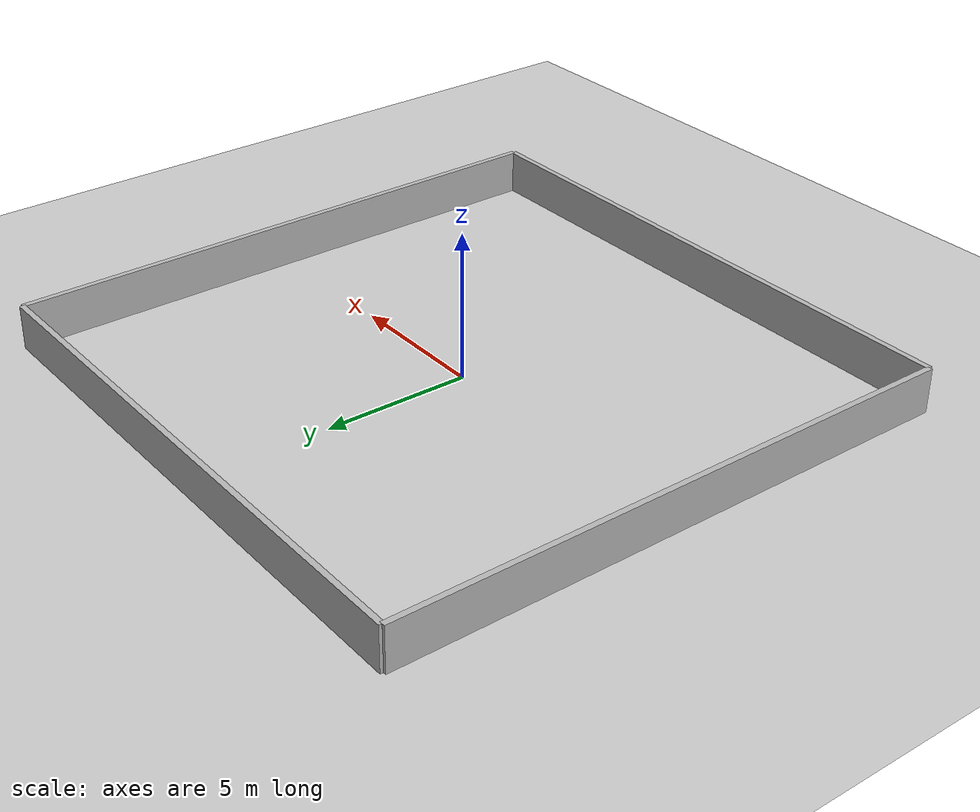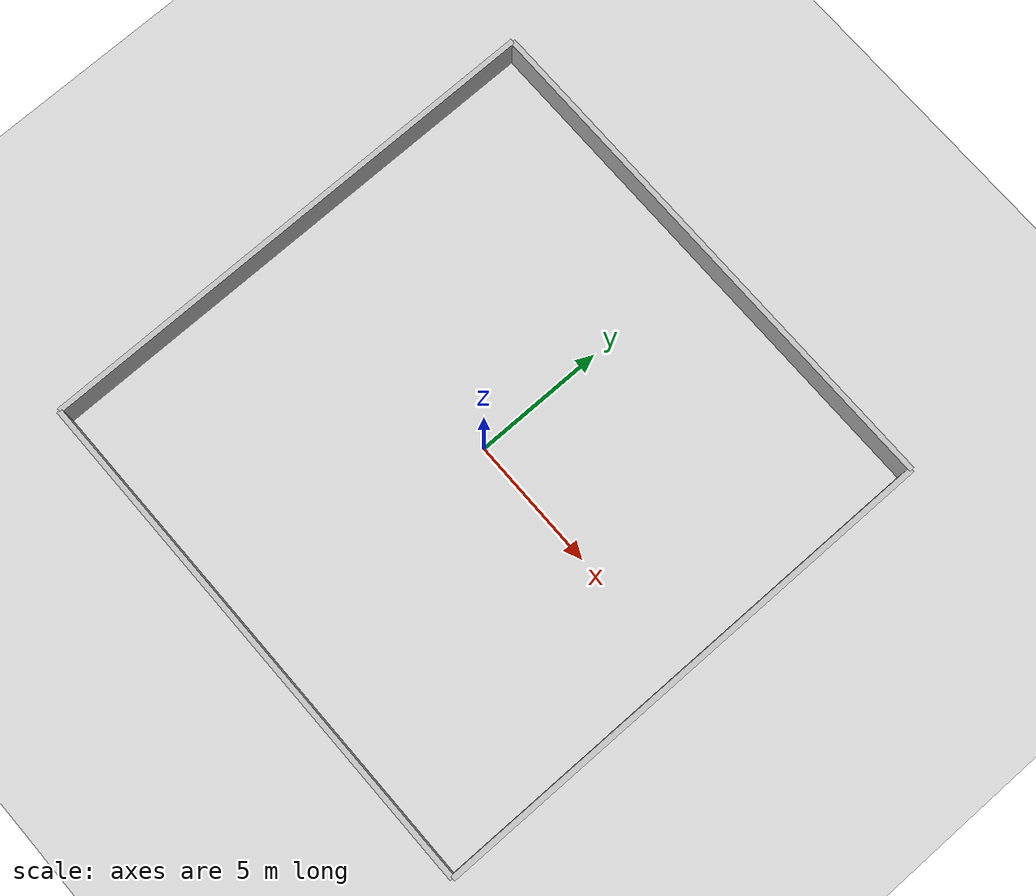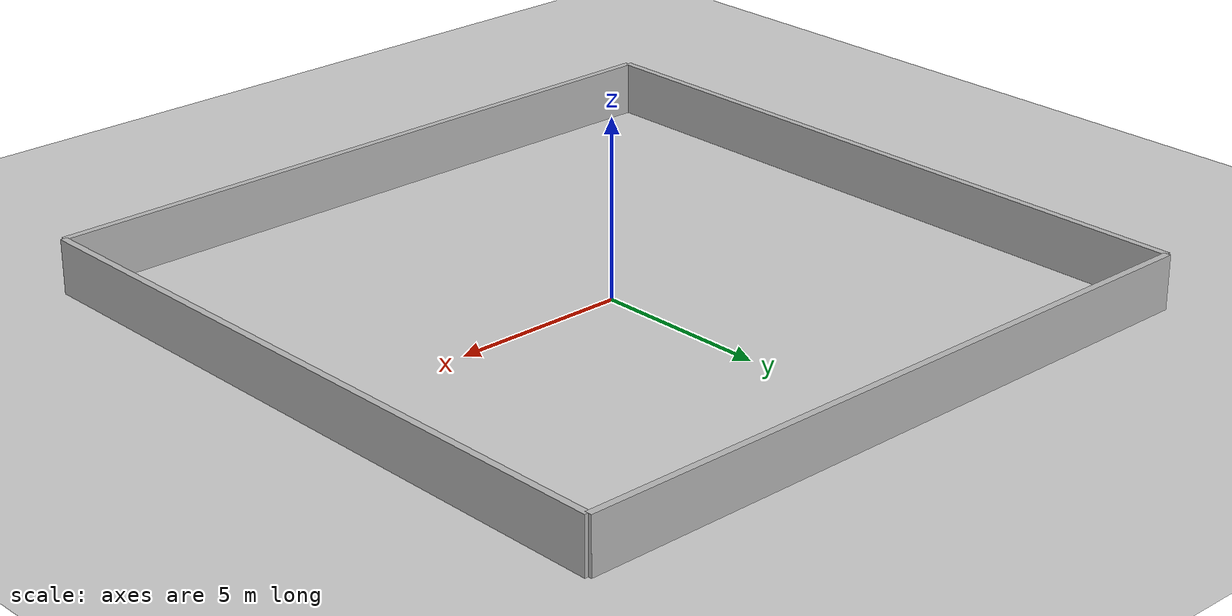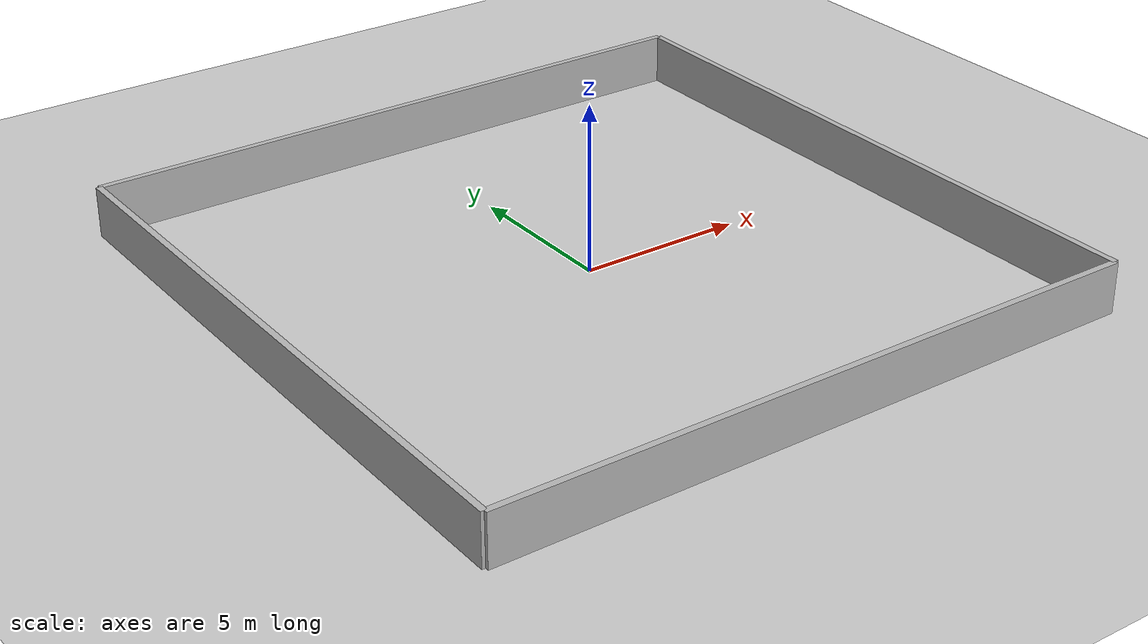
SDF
<?xml version="1.0" ?>

<sdf version="1.6">
  <world name="diff_drive">

    <physics name="1ms" type="ignored">
      <max_step_size>0.001</max_step_size>
      <real_time_factor>1.0</real_time_factor>
    </physics>

      <plugin
        name='ignition::gazebo::systems::Physics'
        filename='ignition-gazebo-physics-system'/>
    <plugin
      filename="ignition-gazebo-user-commands-system"
      name="ignition::gazebo::systems::UserCommands">
    </plugin>
    <plugin
      filename="ignition-gazebo-scene-broadcaster-system"
      name="ignition::gazebo::systems::SceneBroadcaster">
    </plugin>

    <plugin
      filename="libignition-gazebo-sensors-system.so"
      name="ignition::gazebo::systems::Sensors">
      <render_engine>ogre2</render_engine>
    </plugin>

    <gui fullscreen="0">

      <!-- 3D scene -->
      <plugin filename="GzScene3D" name="3D View">
        <ignition-gui>
          <title>3D View</title>
          <property type="bool" key="showTitleBar">false</property>
          <property type="string" key="state">docked</property>
        </ignition-gui>

        <engine>ogre2</engine>
        <scene>scene</scene>
        <ambient_light>0.4 0.4 0.4</ambient_light>
        <background_color>0.8 0.8 0.8</background_color>
        <camera_pose>-6 0 6 0 0.5 0</camera_pose>
      </plugin>

      <!-- World control -->
      <plugin filename="WorldControl" name="World control">
        <ignition-gui>
          <title>World control</title>
          <property type="bool" key="showTitleBar">false</property>
          <property type="bool" key="resizable">false</property>
          <property type="double" key="height">72</property>
          <property type="double" key="width">121</property>
          <property type="double" key="z">1</property>

          <property type="string" key="state">floating</property>
          <anchors target="3D View">
            <line own="left" target="left"/>
            <line own="bottom" target="bottom"/>
          </anchors>
        </ignition-gui>

        <play_pause>true</play_pause>
        <step>true</step>
        <start_paused>true</start_paused>

      </plugin>

      <!-- World statistics -->
      <plugin filename="WorldStats" name="World stats">
        <ignition-gui>
          <title>World stats</title>
          <property type="bool" key="showTitleBar">false</property>
          <property type="bool" key="resizable">false</property>
          <property type="double" key="height">110</property>
          <property type="double" key="width">290</property>
          <property type="double" key="z">1</property>

          <property type="string" key="state">floating</property>
          <anchors target="3D View">
            <line own="right" target="right"/>
            <line own="bottom" target="bottom"/>
          </anchors>
        </ignition-gui>

        <sim_time>true</sim_time>
        <real_time>true</real_time>
        <real_time_factor>true</real_time_factor>
        <iterations>true</iterations>
      </plugin>

      <!-- Inspector -->
      <plugin filename="ComponentInspector" name="Component inspector">
        <ignition-gui>
          <property type="string" key="state">docked_collapsed</property>
        </ignition-gui>
      </plugin>

      <!-- Entity tree -->
      <plugin filename="EntityTree" name="Entity tree">
        <ignition-gui>
          <property type="string" key="state">docked_collapsed</property>
        </ignition-gui>
      </plugin>

      <plugin filename="VisualizeLidar" name="Visualize Lidar">
        <ignition-gui>
          <property key="state" type="string">docked_collapsed</property>
        </ignition-gui>
      </plugin>

      <!-- Translate / rotate -->
      <plugin filename="TransformControl" name="Transform control">
        <ignition-gui>
          <title>Transform control</title>
          <anchors target="3D View">
            <line own="left" target="left"/>
            <line own="top" target="top"/>
          </anchors>
          <property key="resizable" type="bool">false</property>
          <property key="width" type="double">230</property>
          <property key="height" type="double">50</property>
          <property key="state" type="string">floating</property>
          <property key="showTitleBar" type="bool">false</property>
          <property key="cardBackground" type="string">#666666</property>
        </ignition-gui>
      </plugin>

      <!-- Insert simple shapes -->
      <plugin filename="Shapes" name="Shapes">
        <ignition-gui>
          <anchors target="Transform control">
            <line own="left" target="right"/>
            <line own="top" target="top"/>
          </anchors>
          <property key="resizable" type="bool">false</property>
          <property key="width" type="double">200</property>
          <property key="height" type="double">50</property>
          <property key="state" type="string">floating</property>
          <property key="showTitleBar" type="bool">false</property>
          <property key="cardBackground" type="string">#666666</property>
        </ignition-gui>
      </plugin>

    </gui>

    <light type="directional" name="sun">
      <cast_shadows>false</cast_shadows>
      <pose>0 0 10 0 0 0</pose>
      <diffuse>1 1 1 1</diffuse>
      <specular>0.5 0.5 0.5 1</specular>
      <attenuation>
        <range>1000</range>
        <constant>0.9</constant>
        <linear>0.01</linear>
        <quadratic>0.001</quadratic>
      </attenuation>
      <direction>-0.5 0.1 -0.9</direction>
    </light>

    <model name="ground_plane">
      <static>true</static>
      <link name="link">
        <collision name="collision">
          <geometry>
            <plane>
              <normal>0 0 1</normal>
            </plane>
          </geometry>
        </collision>
        <visual name="visual">
          <geometry>
            <plane>
              <normal>0 0 1</normal>
              <size>100 100</size>
            </plane>
          </geometry>
          <material>
            <ambient>0.8 0.8 0.8 1</ambient>
            <diffuse>0.8 0.8 0.8 1</diffuse>
            <specular>0.8 0.8 0.8 1</specular>
          </material>
        </visual>
      </link>
    </model>

    <model name="wall">
      <pose>10 0 0.5 0 0 0</pose>
      <link name="body">
        <collision name="collision1">
          <geometry>
            <box>
              <size>0.2 20 2</size>
            </box>
          </geometry>
        </collision>
        <visual name="visual1">
          <geometry>
            <box>
              <size>0.2 20 2</size>
            </box>
          </geometry>
        </visual>
      </link>
    </model>

    <model name="wall1">
      <pose>-10 0 0.5 0 0 0</pose>
      <link name="body">
        <collision name="collision1">
          <geometry>
            <box>
              <size>0.2 20 2</size>
            </box>
          </geometry>
        </collision>
        <visual name="visual1">
          <geometry>
            <box>
              <size>0.2 20 2</size>
            </box>
          </geometry>
        </visual>
      </link>
    </model>

    <model name="wall2">
      <pose>0 10 0.5 0 0 0</pose>
      <link name="body">
        <collision name="collision1">
          <geometry>
            <box>
              <size>20 0.2 2</size>
            </box>
          </geometry>
        </collision>
        <visual name="visual1">
          <geometry>
            <box>
              <size>20 0.2 2</size>
            </box>
          </geometry>
        </visual>
      </link>
    </model>

    <model name="wall3">
      <pose>0 -10 0.5 0 0 0</pose>
      <link name="body">
        <collision name="collision1">
          <geometry>
            <box>
              <size>20 0.2 2</size>
            </box>
          </geometry>
        </collision>
        <visual name="visual1">
          <geometry>
            <box>
              <size>20 0.2 2</size>
            </box>
          </geometry>
        </visual>
      </link>
    </model>

  </world>
</sdf>
